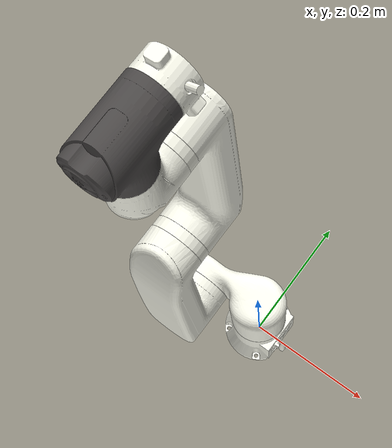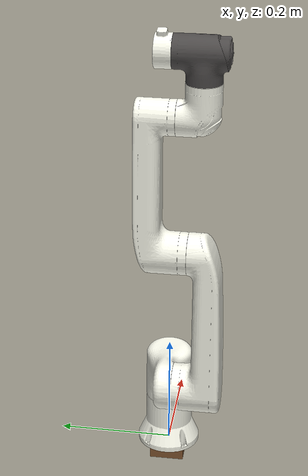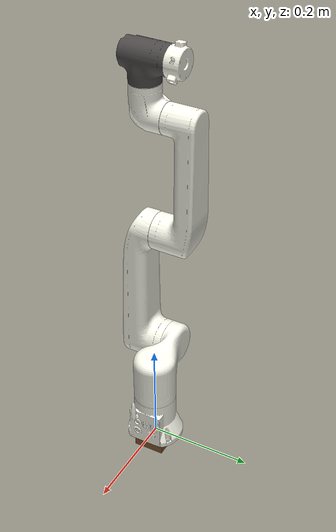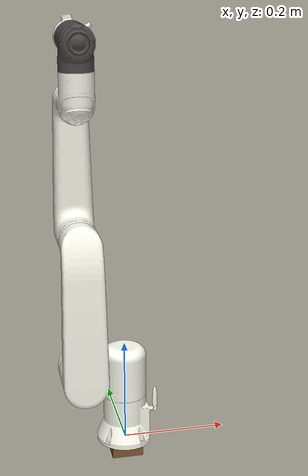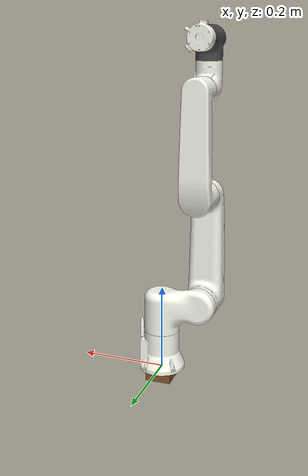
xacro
<?xml version="1.0" encoding="utf-8"?>
<robot  name="rm_eco65" xmlns:xacro="http://www.ros.org/wiki/xacro">
<xacro:include filename="$(find rm_description)/urdf/ECO65/rm_eco65.transmission.xacro"/>
<xacro:include filename="$(find rm_description)/urdf/ECO65/rm_eco65.gazebo.xacro"/>
  <!-- Inertial matrix -->
<xacro:macro name="inertial_matrix" params="mass">
<inertial>
    <mass value="${mass}" />
    <inertia ixx="1.0" ixy="0.0" ixz="0.0" iyy="0.5" iyz="0.0" izz="1.0" />
</inertial>
</xacro:macro>
 <xacro:macro name="Box_inertial_matrix" params="m l w h">
       <inertial>
               <mass value="${m}" />
               <inertia ixx="${m*(h*h + l*l)/12}" ixy = "0" ixz = "0"
                   iyy="${m*(w*w + l*l)/12}" iyz= "0"
                   izz="${m*(w*w + h*h)/12}" />
       </inertial>
  </xacro:macro>

    <link name="dummy">
    </link>
    <joint name="dummy_joint" type="fixed">
      <parent link="dummy" />
      <child link="baselink" />
    </joint>

  <!-- ///////////////////////////////////////   bottom_joint   ////////////////////////////////////////// -->
  <joint name="bottom_joint" type="fixed">
    <origin xyz="0 0 0" rpy="0 0 0" />
    <parent link="baselink"/>
    <child link="bottom_link"/>
  </joint>
  <link name="bottom_link">
    <visual>
      <origin xyz=" 0 0 -0.02"  rpy="0 0 0"/>
      <geometry>
        <box size="0.06 0.06 0.02" />
      </geometry>
      <material name="Brown" />
    </visual>
    <collision>
      <origin xyz=" 0 0 -0.02"  rpy="0 0 0"/>
      <geometry>
        <box size="0.06 0.06 0.02" />
      </geometry>
    </collision>
    <xacro:Box_inertial_matrix m="500" l="1" w="1" h="0.02"/>
  </link>

  <link name="baselink">
  <inertial>
    <origin
      xyz="0.00059982 -9.2932E-05 0.043301"
      rpy="0 0 0" />
    <mass
      value="0.61127" />
    <inertia
      ixx="0.00080212"
      ixy="3.0281E-06"
      ixz="-2.8747E-05"
      iyy="0.00080502"
      iyz="1.9749E-06"
      izz="0.00066167" />
  </inertial>
  <visual>
    <origin
      xyz="0 0 0"
      rpy="0 0 0" />
    <geometry>
      <mesh
        filename="package://rm_description/meshes/ECO65/baselink.STL" />
    </geometry>
    <material
      name="">
      <color
        rgba="1 1 0.9451 1" />
    </material>
  </visual>
  <collision>
    <origin
      xyz="0 0 0"
      rpy="0 0 0" />
    <geometry>
      <mesh
        filename="package://rm_description/meshes/ECO65/baselink.STL" />
    </geometry>
  </collision>
</link>

  <link
  name="Link1">
  <inertial>
    <origin
      xyz="-0.022858 -2.0784E-06 -0.013658"
      rpy="0 0 0" />
    <mass
      value="0.74247" />
    <inertia
      ixx="0.00081398"
      ixy="-1.9024E-05"
      ixz="0.00022746"
      iyy="0.001848"
      iyz="2.0444E-06"
      izz="0.0015286" />
  </inertial>
  <visual>
    <origin
      xyz="0 0 0"
      rpy="0 0 0" />
    <geometry>
      <mesh
        filename="package://rm_description/meshes/ECO65/Link1.STL" />
    </geometry>
    <material
      name="">
      <color
        rgba="1 1 0.9451 1" />
    </material>
  </visual>
  <collision>
    <origin
      xyz="0 0 0"
      rpy="0 0 0" />
    <geometry>
      <mesh
        filename="package://rm_description/meshes/ECO65/Link1.STL" />
    </geometry>
  </collision>
</link>
<joint
  name="joint1"
  type="revolute">
  <origin
    xyz="0 0 0.1625"
    rpy="0 0 0" />
  <parent
    link="baselink" />
  <child
    link="Link1" />
  <axis
    xyz="0 0 1" />
  <limit
    lower="-3.1923"
    upper="3.1923"
    effort="100"
    velocity="1" />
</joint>
<link
  name="Link2">
  <inertial>
    <origin
      xyz="-1.6049E-06 0.10336 0.067332"
      rpy="0 0 0" />
    <mass
      value="1.3502" />
    <inertia
      ixx="0.012821"
      ixy="-7.2979E-08"
      ixz="1.1499E-08"
      iyy="0.0011237"
      iyz="-0.00033755"
      izz="0.012933" />
  </inertial>
  <visual>
    <origin
      xyz="0 0 0"
      rpy="0 0 0" />
    <geometry>
      <mesh
        filename="package://rm_description/meshes/ECO65/Link2.STL" />
    </geometry>
    <material
      name="">
      <color
        rgba="1 1 0.9451 1" />
    </material>
  </visual>
  <collision>
    <origin
      xyz="0 0 0"
      rpy="0 0 0" />
    <geometry>
      <mesh
        filename="package://rm_description/meshes/ECO65/Link2.STL" />
    </geometry>
  </collision>
</link>
<joint
  name="joint2"
  type="revolute">
  <origin
    xyz="-0.086 0 0"
    rpy="1.5708 0 0" />
  <parent
    link="Link1" />
  <child
    link="Link2" />
  <axis
    xyz="0 0 -1" />
  <limit
    lower="-2.61666"
    upper="2.442"
    effort="100"
    velocity="1" />
</joint>
<link
  name="Link3">
  <inertial>
    <origin
      xyz="0.10374 7.0495E-07 0.018599"
      rpy="0 0 0" />
    <mass
      value="1.0422" />
    <inertia
      ixx="0.00084115"
      ixy="-2.2514E-08"
      ixz="-0.00068613"
      iyy="0.0094046"
      iyz="-3.3287E-09"
      izz="0.0092482" />
  </inertial>
  <visual>
    <origin
      xyz="0 0 0"
      rpy="0 0 0" />
    <geometry>
      <mesh
        filename="package://rm_description/meshes/ECO65/Link3.STL" />
    </geometry>
    <material
      name="">
      <color
        rgba="1 1 0.9451 1" />
    </material>
  </visual>
  <collision>
    <origin
      xyz="0 0 0"
      rpy="0 0 0" />
    <geometry>
      <mesh
        filename="package://rm_description/meshes/ECO65/Link3.STL" />
    </geometry>
  </collision>
</link>
<joint
  name="joint3"
  type="revolute">
  <origin
    xyz="0 0.26 0"
    rpy="3.1416 0 1.5708" />
  <parent
    link="Link2" />
  <child
    link="Link3" />
  <axis
    xyz="0 0 1" />
  <limit
    lower="-2.61666"
    upper="2.61666"
    effort="100"
    velocity="1" />
</joint>
<link
  name="Link4">
  <inertial>
    <origin
      xyz="-0.0069819 -0.016328 0.0067416"
      rpy="0 0 0" />
    <mass
      value="0.27383" />
    <inertia
      ixx="0"
      ixy="0"
      ixz="0"
      iyy="0"
      iyz="0"
      izz="0" />
  </inertial>
  <visual>
    <origin
      xyz="0 0 0"
      rpy="0 0 0" />
    <geometry>
      <mesh
        filename="package://rm_description/meshes/ECO65/Link4.STL" />
    </geometry>
    <material
      name="">
      <color
        rgba="1 1 0.9451 1" />
    </material>
  </visual>
  <collision>
    <origin
      xyz="0 0 0"
      rpy="0 0 0" />
    <geometry>
      <mesh
        filename="package://rm_description/meshes/ECO65/Link4.STL" />
    </geometry>
  </collision>
</link>
<joint
  name="joint4"
  type="revolute">
  <origin
    xyz="0.24 0 -0.05888"
    rpy="0 0 1.5708" />
  <parent
    link="Link3" />
  <child
    link="Link4" />
  <axis
    xyz="0 0 1" />
  <limit
    lower="-2.61666"
    upper="2.61666"
    effort="100"
    velocity="1" />
</joint>
<link
  name="Link5">
  <inertial>
    <origin
      xyz="-0.00040425 0.0066328 -0.012475"
      rpy="0 0 0" />
    <mass
      value="0.27794" />
    <inertia
      ixx="0.00024751"
      ixy="-5.6849E-09"
      ixz="5.4838E-10"
      iyy="0.00017648"
      iyz="-2.8552E-05"
      izz="0.00019295" />
  </inertial>
  <visual>
    <origin
      xyz="0 0 0"
      rpy="0 0 0" />
    <geometry>
      <mesh
        filename="package://rm_description/meshes/ECO65/Link5.STL" />
    </geometry>
    <material
      name="">
      <color
        rgba="0.29804 0.28627 0.28235 1" />
    </material>
  </visual>
  <collision>
    <origin
      xyz="0 0 0"
      rpy="0 0 0" />
    <geometry>
      <mesh
        filename="package://rm_description/meshes/ECO65/Link5.STL" />
    </geometry>
  </collision>
</link>
<joint
  name="joint5"
  type="revolute">
  <origin
    xyz="0.00040486 -0.10983 0"
    rpy="1.5708 0 0" />
  <parent
    link="Link4" />
  <child
    link="Link5" />
  <axis
    xyz="0 0 1" />
  <limit
    lower="-2.96555"
    upper="2.96555"
    effort="100"
    velocity="1" />
</joint>
<link
  name="Link6">
  <inertial>
    <origin
      xyz="0.00095587 -0.0013555 -0.010297"
      rpy="0 0 0" />
    <mass
      value="0.033025" />
    <inertia
      ixx="1.2968E-05"
      ixy="-7.8692E-07"
      ixz="8.451E-08"
      iyy="1.1583E-05"
      iyz="-1.2002E-07"
      izz="2.0405E-05" />
  </inertial>
  <visual>
    <origin
      xyz="0 0 0"
      rpy="0 0 0" />
    <geometry>
      <mesh
        filename="package://rm_description/meshes/ECO65/Link6.STL" />
    </geometry>
    <material
      name="">
      <color
        rgba="1 1 0.9451 1" />
    </material>
  </visual>
  <collision>
    <origin
      xyz="0 0 0"
      rpy="0 0 0" />
    <geometry>
      <mesh
        filename="package://rm_description/meshes/ECO65/Link6.STL" />
    </geometry>
  </collision>
</link>
<joint
  name="joint6"
  type="revolute">
  <origin
    xyz="0 0.0795 0"
    rpy="-1.5708 0 0" />
  <parent
    link="Link5" />
  <child
    link="Link6" />
  <axis
    xyz="0 0 1" />
  <limit
    lower="-2.96555"
    upper="2.96555"
    effort="100"
    velocity="1" />
</joint>

  <!-- Transmissions for ROS Control -->
  <xacro:macro name="transmission_block" params="joint_name">
    <transmission name="tran1">
      <type>transmission_interface/SimpleTransmission</type>
      <joint name="${joint_name}">
        <hardwareInterface>hardware_interface/PositionJointInterface</hardwareInterface>
      </joint>
      <actuator name="motor1">
        <hardwareInterface>hardware_interface/PositionJointInterface</hardwareInterface>
        <mechanicalReduction>1</mechanicalReduction>
      </actuator>
    </transmission>
  </xacro:macro>

  <xacro:transmission_block joint_name="joint1"/>
  <xacro:transmission_block joint_name="joint2"/>
  <xacro:transmission_block joint_name="joint3"/>
  <xacro:transmission_block joint_name="joint4"/>
  <xacro:transmission_block joint_name="joint5"/>
  <xacro:transmission_block joint_name="joint6"/>

  <!-- ros_control plugin -->
  <gazebo>
    <plugin name="gazebo_ros_control" filename="libgazebo_ros_control.so">
      <robotNamespace>/arm</robotNamespace>
      <robotSimType>gazebo_ros_control/DefaultRobotHWSim</robotSimType>
      <legacyModeNS>true</legacyModeNS>
    </plugin>
  </gazebo>
</robot>
